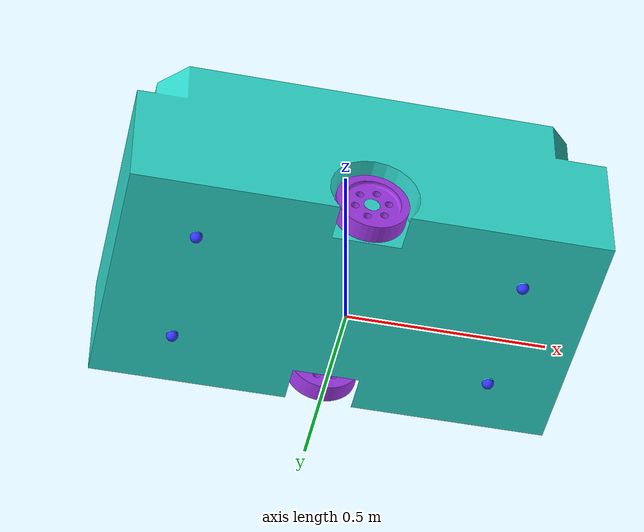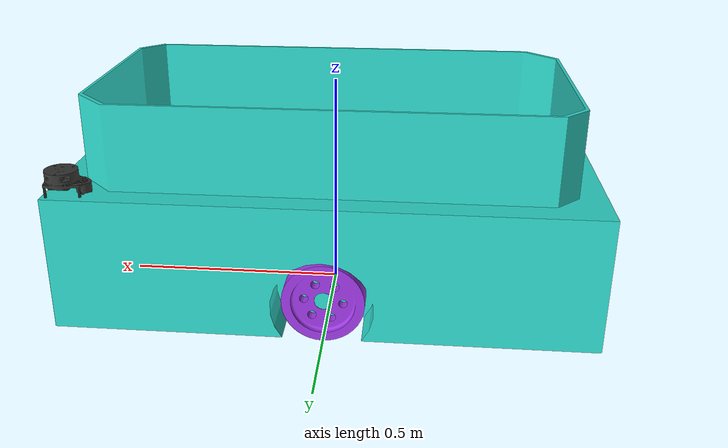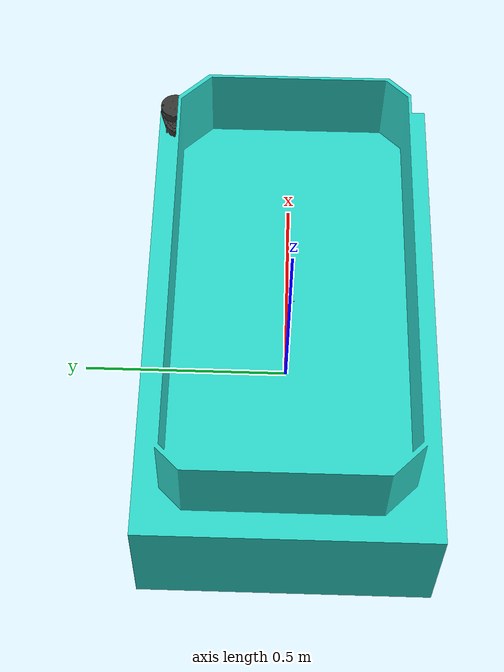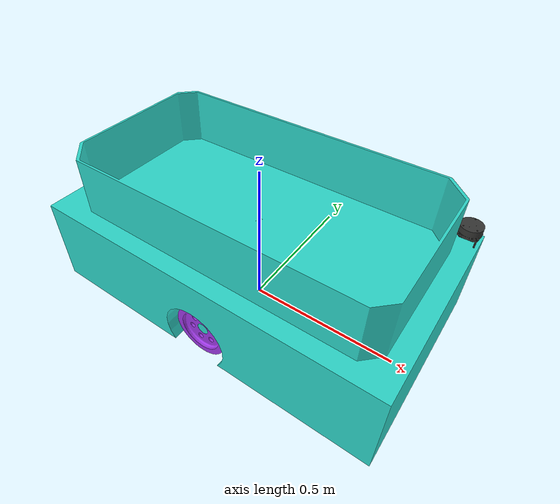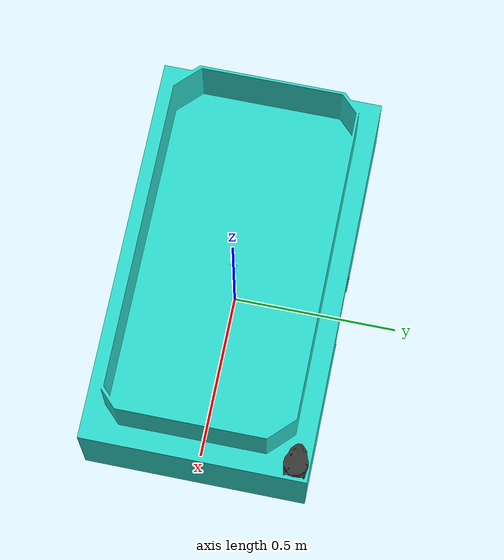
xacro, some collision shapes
<?xml version="1.0"?>
<robot xmlns:xacro="http://www.ros.org/wiki/xacro" name="robot">

    <!-- Example link0 -->

    <xacro:include filename="robot_core.xacro" />

    <xacro:include filename="lidar.xacro" />

    <xacro:include filename="ros2_control.xacro" />

</robot>

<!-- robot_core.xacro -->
<robot xmlns:xacro="http://www.ros.org/wiki/xacro" >

    <xacro:include filename="inertial_macros.xacro"/>

    <material name="white">
        <color rgba="1 1 1 1"/>
    </material>

    <material name="orange">
        <color rgba="1 0.3 0.1 1"/>
    </material>

    <material name="blue">
        <color rgba="0.2 0.2 1 1"/>
    </material>

    <material name="black">
        <color rgba="0 0 0 1"/>
    </material>

    <material name="red">
        <color rgba="1 0 0 1"/>
    </material>

    <material name="green">
        <color rgba="0 1 0 1"/>
    </material>

    <material name="vibrantorange">
        <color rgba="1.0 0.5 0 1"/>
    </material>

    <material name="xanhlo">
        <color rgba="0.18 0.85 0.8 1"/>
    </material>

    <material name="xanhdaquang">
        <color rgba="0.4 0.91 0.22 1"/>
    </material>

    <material name="tim">
        <color rgba="0.62 0.22 0.9 1"/>
    </material>

    <!-- BASE FOOTPRINT -->

    <link name="base_footprint">

    </link>

    <!-- BASE LINK -->

    <joint name="base_joint" type="fixed">
        <parent link="base_footprint"/>
        <child link="base_link"/>
        <origin xyz="0 0 0.09" rpy="0 0 0"/>
    </joint>

    <link name="base_link">
        <visual>
            <origin xyz="0 0 0"/>
            <geometry>
                <mesh filename="package://amr_lan_2_mesh/meshes/base_link.STL"/>
            </geometry>
            <material name="xanhlo"/>
        </visual>
        <collision>
            <origin xyz="0 0 0"/>
            <geometry>
                <mesh filename="package://amr_lan_2_mesh/meshes/base_link.STL"/>
            </geometry>
        </collision>

        <xacro:inertial_box mass="200" x="1.0" y="0.6" z="0.1">
            <origin xyz="0 0 0" rpy="0 0 0"/>
        </xacro:inertial_box>
    </link>

    <gazebo reference="base_link">
        <material>Gazebo/Green</material>
    </gazebo>

    <!-- LEFT WHEEL LINK -->

    <joint name="left_wheel_joint" type="continuous">
        <parent link="base_link"/>
        <child link="left_wheel"/>
        <origin xyz="0 0.28 0" rpy="-${pi/2} 0 0"/>
        <axis xyz="0 0 1"/>
    </joint>

    <link name="left_wheel">
        <visual>
            <origin xyz="0 0 0"/>
            <geometry>
                <mesh filename="package://amr_lan_2_mesh/meshes/left_wheel.STL"/>
            </geometry>
            <material name="tim"/>
        </visual>
        <collision>
            <origin xyz="0 0 0"/>
            <geometry>
                <cylinder radius="0.09" length="0.05"/>
            </geometry>
        </collision>

        <xacro:inertial_cylinder mass = "1.5" length="0.05" radius="0.09">
            <origin xyz="0 0 0" rpy="0 0 0"/>
        </xacro:inertial_cylinder>
    </link>

    <gazebo reference="left_wheel">
        <material>Gazebo/Purple</material>
        <mu1 value="0.4"/>
        <mu2 value="0.4"/>
    </gazebo>

    <!-- RIGHT WHEEL LINK -->

    <joint name="right_wheel_joint" type="continuous">
        <parent link="base_link"/>
        <child link="right_wheel"/>
        <origin xyz="0 -0.28 0" rpy="${pi/2} 0 0"/>
        <axis xyz="0 0 -1"/>
    </joint>

    <link name="right_wheel">
        <visual>
            <origin xyz="0 0 0"/>
            <geometry>
                <mesh filename="package://amr_lan_2_mesh/meshes/right_wheel.STL"/>
            </geometry>
            <material name="tim"/>
        </visual>
        <collision>
            <origin xyz="0 0 0"/>
            <geometry>
                <cylinder radius="0.09" length="0.05"/>
            </geometry>
        </collision>

        <xacro:inertial_cylinder mass = "1.5" length="0.05" radius="0.09">
            <origin xyz="0 0 0" rpy="0 0 0"/>
        </xacro:inertial_cylinder>
    </link>

    <gazebo reference="right_wheel">
        <material>Gazebo/Purple</material>
        <mu1 value="0.4"/>
        <mu2 value="0.4"/>
    </gazebo>

    <!-- CASTER WHEEL RIGHT BEHIND LINK -->

    <joint name="caster_wheel_right_behind_joint" type="fixed">
        <parent link="base_link"/>
        <child link="caster_wheel_right_behind"/>
        <origin xyz="-0.4 -0.17 -0.0749" rpy="0 0 0"/>
    </joint>

    <link name="caster_wheel_right_behind">
        <visual>
            <origin xyz="0 0 0"/>
            <geometry>
                <mesh filename= "package://amr_lan_2_mesh/meshes/caster_wheel_right_behind.STL"/>
            </geometry>
            <material name="blue"/>
        </visual>
        <collision>
            <origin xyz="0 0 0"/>
            <geometry>
                <sphere radius="0.015"/>
            </geometry>
        </collision>

        <xacro:inertial_sphere mass="0.5" radius="0.015">
            <origin xyz="0 0 0" rpy="0 0 0"/>
        </xacro:inertial_sphere>
    </link>

    <gazebo reference="caster_wheel_right_behind">
        <material>Gazebo/Blue</material>
        <mu1 value="0"/>
        <mu2 value="0"/>
    </gazebo>

    <!-- CASTER WHEEL LEFT BEHIND LINK -->

    <joint name="caster_wheel_left_behind_joint" type="fixed">
        <parent link="base_link"/>
        <child link="caster_wheel_left_behind"/>
        <origin xyz="-0.4 0.17 -0.0749" rpy="0 0 0"/>
    </joint>

    <link name="caster_wheel_left_behind">
        <visual>
            <origin xyz="0 0 0"/>
            <geometry>
                <mesh filename="package://amr_lan_2_mesh/meshes/caster_wheel_left_behind.STL"/>
            </geometry>
            <material name="blue"/>
        </visual>
        <collision>
            <origin xyz="0 0 0"/>
            <geometry>
                <sphere radius="0.015"/>
            </geometry>
        </collision>

        <xacro:inertial_sphere mass="0.5" radius="0.015">
            <origin xyz="0 0 0" rpy="0 0 0"/>
        </xacro:inertial_sphere>
    </link>

    <gazebo reference="caster_wheel_left_behind">
        <material>Gazebo/Blue</material>
        <mu1 value="0"/>
        <mu2 value="0"/>
    </gazebo>

    <!-- CASTER WHEEL RIGHT FRONT LINK -->

    <joint name="caster_wheel_right_front_joint" type="fixed">
        <parent link="base_link"/>
        <child link="caster_wheel_right_front"/>
        <origin xyz="0.4 0.17 -0.0749" rpy="0 0 0"/>
    </joint>

    <link name="caster_wheel_right_front">
        <visual>
            <origin xyz="0 0 0"/>
            <geometry>
                <mesh filename="package://amr_lan_2_mesh/meshes/caster_wheel_right_front.STL"/>
            </geometry>
            <material name="blue"/>
        </visual>
        <collision>
            <origin xyz="0 0 0"/>
            <geometry>
                <sphere radius="0.015"/>
            </geometry>
        </collision>

        <xacro:inertial_sphere mass="0.5" radius="0.015">
            <origin xyz="0 0 0" rpy="0 0 0"/>
        </xacro:inertial_sphere>
    </link>

    <gazebo reference="caster_wheel_right_front">
        <material>Gazebo/Blue</material>
        <mu1 value="0"/>
        <mu2 value="0"/>
    </gazebo>

    <!-- CASTER WHEEL LEFT FRONT LINK -->

    <joint name="caster_wheel_left_front_joint" type="fixed">
        <parent link="base_link"/>
        <child link="caster_wheel_left_front"/>
        <origin xyz="0.4 -0.17 -0.0749" rpy="0 0 0"/>
    </joint>

    <link name="caster_wheel_left_front">
        <visual>
            <origin xyz="0 0 0"/>
            <geometry>
                <mesh filename="package://amr_lan_2_mesh/meshes/caster_wheel_left_front.STL"/>
            </geometry>
            <material name="blue"/>
        </visual>
        <collision>
            <origin xyz="0 0 0"/>
            <geometry>
                <sphere radius="0.015"/>
            </geometry>
        </collision>

        <xacro:inertial_sphere mass="0.5" radius="0.015">
            <origin xyz="0 0 0" rpy="0 0 0"/>
        </xacro:inertial_sphere>
    </link>

    <gazebo reference="caster_wheel_left_front">
        <material>Gazebo/Blue</material>
        <mu1 value="0"/>
        <mu2 value="0"/>
    </gazebo>

</robot>

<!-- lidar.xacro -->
<robot xmlns:xacro="http://www.ros.org/wiki/xacro">

    <xacro:macro name="default_laser" params="prefix *origin">
        <!-- LASER FRAME -->

        <joint name="${prefix}_laser_joint" type="fixed">
            <xacro:insert_block name="origin"/>
            <parent link="base_link" />
            <child link="${prefix}_laser_frame" />
            <axis xyz="0 0 0" />
        </joint>

        <link name="${prefix}_laser_frame">
            <visual>
                <origin xyz="0 0 0" rpy="0 0 0"/>
                <geometry>
                    <mesh filename="package://amr_lan_2_mesh/meshes/laser_frame.STL"/>
                </geometry>
                <material
                    name="">
                    <color
                    rgba="0.211764705882353 0.211764705882353 0.203921568627451 1"/>
                </material>
            </visual>
            <collision>
                <origin xyz="0 0 0" rpy="0 0 0" />
                <geometry>
                    <cylinder radius="0.035" length="0.04"/>
                </geometry>
            </collision>

            <xacro:inertial_cylinder mass="0.1" length="0.04" radius="0.035">
                <origin xyz="0 0 0" rpy="0 0 0"/>
            </xacro:inertial_cylinder>
        </link>

        <gazebo reference="${prefix}_laser_frame">
            <material>Gazebo/Black</material>

            <sensor name="${prefix}_laser" type="ray">
                <pose> 0 0 0 0 0 0 </pose>
                <visualize>true</visualize>
                <update_rate>8</update_rate>
                <ray>
                    <scan>
                        <horizontal>
                            <samples>360</samples>
                            <resolution>1</resolution>
                            <min_angle>-3.14</min_angle>
                            <max_angle>3.14</max_angle>
                        </horizontal>
                    </scan>
                    <range>
                        <min>0.15</min>
                        <max>12</max>
                        <resolution>0.01</resolution>
                    </range>
                </ray>
                <plugin name="${prefix}_laser_controller" filename="libgazebo_ros_ray_sensor.so">
                    <ros>
                        <argument>~/out:=${prefix}/scan</argument>
                    </ros>
                    <output_type>sensor_msgs/LaserScan</output_type>
                    <frame_name>${prefix}_laser_frame</frame_name>
                </plugin>
            </sensor>
        </gazebo>

    </xacro:macro>

    <xacro:default_laser prefix="front">
        <origin xyz="0.545 0.2925 0.283" rpy="0 0 ${pi}"/>
    /</xacro:default_laser>

</robot>
